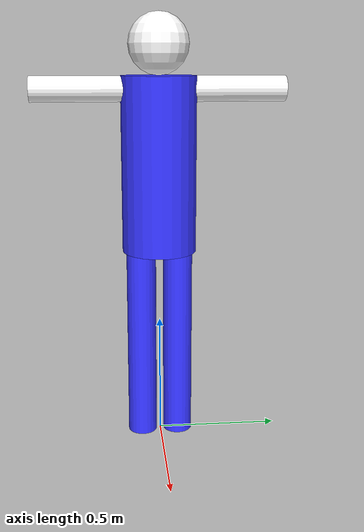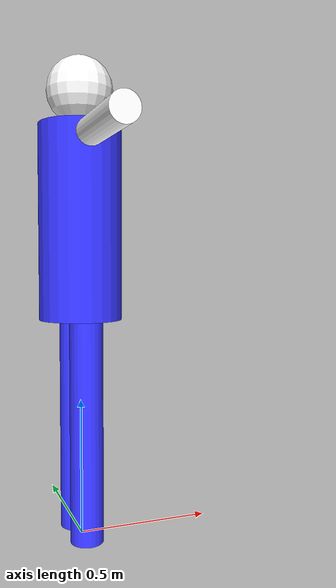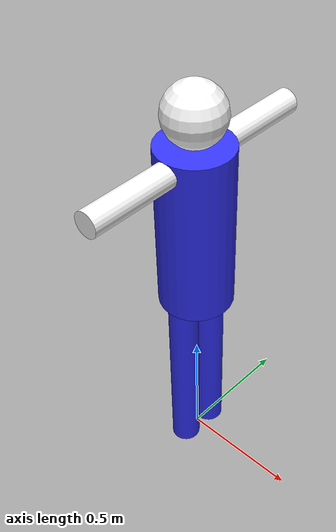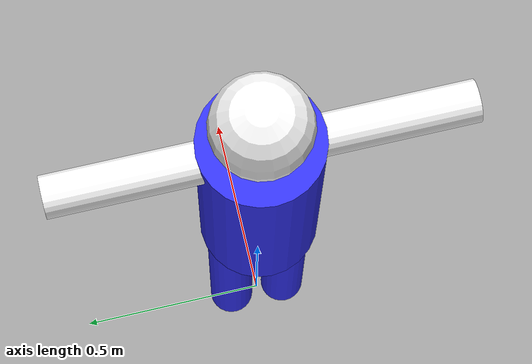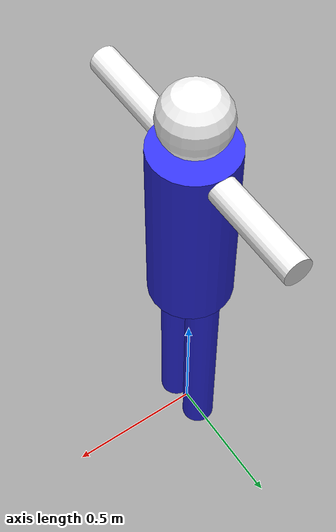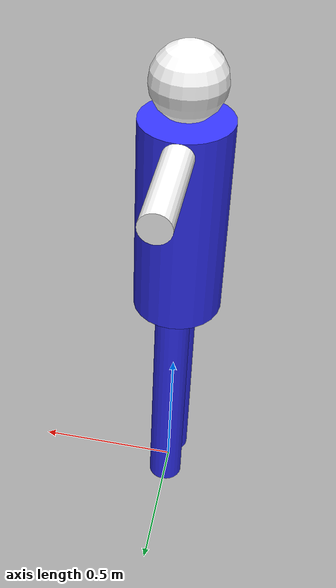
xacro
<?xml version="1.0"?>
<robot name="simple_person" xmlns:xacro="http://www.ros.org/wiki/xacro">

  <!-- Constants for the model -->
  <xacro:property name="torso_height" value="0.7" />
  <xacro:property name="torso_radius" value="0.15" />
  <xacro:property name="head_radius" value="0.12" />
  <xacro:property name="arm_length" value="0.6" />
  <xacro:property name="arm_radius" value="0.05" />
  <xacro:property name="leg_length" value="0.8" />
  <xacro:property name="leg_radius" value="0.06" />

  <!-- Base Link (at the feet, defined in an ENU frame) -->
  <link name="person_enu_link" />

  <!-- Torso Link -->
  <joint name="torso_joint" type="fixed">
    <parent link="person_enu_link"/>
    <child link="torso_link"/>
    <origin xyz="0 0 ${leg_length + torso_height/2}" rpy="0 0 0"/>
  </joint>

  <link name="torso_link">
    <visual>
      <geometry>
        <cylinder length="${torso_height}" radius="${torso_radius}"/>
      </geometry>
      <material name="blue">
        <color rgba="0.2 0.2 1.0 1.0"/>
      </material>
    </visual>
  </link>

  <!-- Head Link -->
  <joint name="head_joint" type="fixed">
    <parent link="torso_link"/>
    <child link="head_link"/>
    <origin xyz="0 0 ${torso_height/2 + head_radius}" rpy="0 0 0"/>
  </joint>

  <link name="head_link">
    <visual>
      <geometry>
        <sphere radius="${head_radius}"/>
      </geometry>
      <material name="white">
        <color rgba="1.0 1.0 1.0 1.0"/>
      </material>
    </visual>
  </link>

  <!-- Right Arm Link -->
  <joint name="right_arm_joint" type="fixed">
    <parent link="torso_link"/>
    <child link="right_arm_link"/>
    <origin xyz="0 ${-torso_radius - arm_radius} ${torso_height/2 - arm_radius}" rpy="${-pi/2} 0 0"/>
  </joint>

  <link name="right_arm_link">
    <visual>
      <geometry>
        <cylinder length="${arm_length}" radius="${arm_radius}"/>
      </geometry>
      <material name="white"/>
    </visual>
  </link>

  <!-- Left Arm Link -->
  <joint name="left_arm_joint" type="fixed">
    <parent link="torso_link"/>
    <child link="left_arm_link"/>
    <origin xyz="0 ${torso_radius + arm_radius} ${torso_height/2 - arm_radius}" rpy="${pi/2} 0 0"/>
  </joint>

  <link name="left_arm_link">
    <visual>
      <geometry>
        <cylinder length="${arm_length}" radius="${arm_radius}"/>
      </geometry>
      <material name="white"/>
    </visual>
  </link>

  <!-- Right Leg Link -->
  <joint name="right_leg_joint" type="fixed">
    <parent link="person_enu_link"/>
    <child link="right_leg_link"/>
    <origin xyz="0 ${-torso_radius/2} ${leg_length/2}" rpy="0 0 0"/>
  </joint>

  <link name="right_leg_link">
    <visual>
      <geometry>
        <cylinder length="${leg_length}" radius="${leg_radius}"/>
      </geometry>
      <material name="blue"/>
    </visual>
  </link>

  <!-- Left Leg Link -->
  <joint name="left_leg_joint" type="fixed">
    <parent link="person_enu_link"/>
    <child link="left_leg_link"/>
    <origin xyz="0 ${torso_radius/2} ${leg_length/2}" rpy="0 0 0"/>
  </joint>

  <link name="left_leg_link">
    <visual>
      <geometry>
        <cylinder length="${leg_length}" radius="${leg_radius}"/>
      </geometry>
      <material name="blue"/>
    </visual>
  </link>

</robot>
